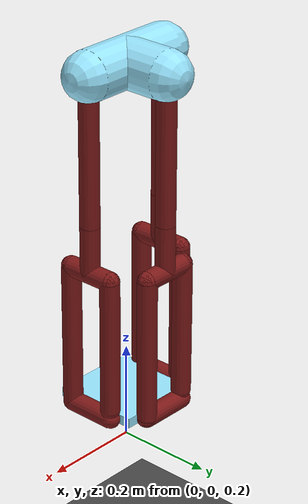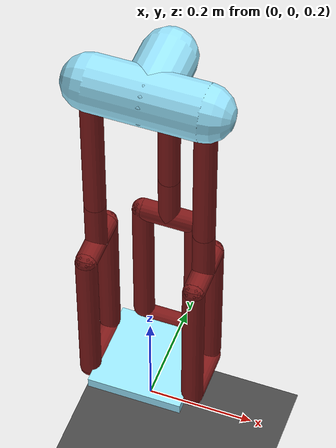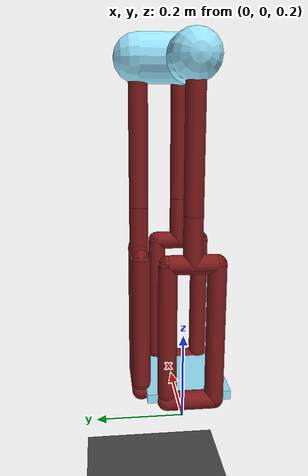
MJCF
<mujoco model="test01">
    <compiler coordinate="global"/>

    <default>
        <joint type="hinge" damping=".2" stiffness="1" armature=".01" limited="true" solimplimit="0 .99 .01"/>
    </default>
    <asset>
        <texture type="skybox" builtin="gradient" rgb1="0.6 0.6 0.6" rgb2="0 0 0" width="512" height="512"/>
        <texture name="texplane" type="2d" builtin="checker" rgb1=".25 .25 .25" rgb2=".3 .3 .3" width="512" height="512" mark="cross" markrgb=".8 .8 .8"/>
        <material name="matplane" reflectance="0.3" texture="texplane" texrepeat="1 1" texuniform="true"/>
    </asset>
    <worldbody>

        <!-- ======= Ground ======= -->
        <geom name="ground" type="plane" pos="0 0 0" size="10 10 2" material="matplane"/>
        <light directional="true" diffuse=".8 .8 .8" specular=".2 .2 .2" pos="0 0 5" dir="0 0 -1"/>

        <body name="rod0">
            <geom type="capsule" fromto="0.1 0 1  -0.1 0 1" size=".05" rgba=".6 .9 1. 1"/>
            <geom type="capsule" fromto="0. 0. 1  0. 0.1 1" size=".05" rgba=".6 .9 1. 1"/>
            <joint type="free"/>

            <body name="rod11">
                <geom type="capsule" fromto="0.1 0 1  0.1 0 0.7" size=".02" rgba=".5 .1 .1 1"/>
                <joint name="m1" type="hinge" pos="0.1 0 1" axis="0 -1 0" range="-80 80"/>

                <body name="rod21">
                    <geom  type="capsule" fromto="0.1 0. 0.7  0.1 0. 0.6" size=".02" rgba=".5 .1 .1 1"/>
                    <joint type="hinge" pos="0.1 0 0.7" axis="0 -1 0" range="-80 80"/>

                    <geom  type="capsule" fromto="0.1 0.05 0.6  0.1 -0.05 0.6" size=".02" rgba=".5 .1 .1 1"/>

                    <body name="rod31">
                        <geom type="capsule" fromto="0.1 0.05 0.6  0.1 0.05 0.32" size=".02" rgba=".5 .1 .1 1"/>
                        <joint type="hinge" pos="0.1 0.05 0.6" axis="1 0 0" range="-80 80"/>
                    </body>

                    <body name="rod32">
                        <geom type="capsule" fromto="0.1 -0.05 0.6  0.1 -0.05 0.3" size=".02" rgba=".5 .1 .1 1"/>
                        <joint type="hinge" pos="0.1 -0.05 0.6" axis="1 0 0" range="-80 80"/>

                        <body name="rod41">
                            <geom type="capsule" fromto="0.1 -0.05 0.3  0.1 0.05 0.3" size=".02" rgba=".5 .1 .1 1"/>
                            <joint type="hinge" pos="0.1 -0.05 0.3" axis="1 0 0" range="-80 80"/>
                        </body>
                    </body>

                </body>
            </body>

            <body name="rod12">
                <geom type="capsule" fromto="-0.1 0 1  -0.1 0 0.7" size=".02" rgba=".5 .1 .1 1"/>
                <joint name="m2" type="hinge" pos="-0.1 0 1" axis="0 1 0" range="-80 80"/>

                <body name="rod22">
                    <geom  type="capsule" fromto="-0.1 0 0.7  -0.1 0. 0.6" size=".02" rgba=".5 .1 .1 1"/>
                    <joint type="hinge" pos="-0.1 0 0.7" axis="0 1 0" range="-80 80"/>

                    <geom  type="capsule" fromto="-0.1 0.05 0.6  -0.1 -0.05 0.6" size=".02" rgba=".5 .1 .1 1"/>

                    <body name="rod33">
                        <geom type="capsule" fromto="-0.1 0.05 0.6  -0.1 0.05 0.32" size=".02" rgba=".5 .1 .1 1"/>
                        <joint type="hinge" pos="-0.1 0.05 0.6" axis="-1 0 0" range="-80 80"/>
                    </body>

                    <body name="rod34">
                        <geom type="capsule" fromto="-0.1 -0.05 0.6  -0.1 -0.05 0.3" size=".02" rgba=".5 .1 .1 1"/>
                        <joint type="hinge" pos="-0.1 -0.05 0.6" axis="-1 0 0" range="-80 80"/>

                        <body name="rod42">
                            <geom type="capsule" fromto="-0.1 -0.05 0.3  -0.1 0.05 0.3" size=".02" rgba=".5 .1 .1 1"/>
                            <joint type="hinge" pos="-0.1 -0.05 0.3" axis="-1 0 0" range="-80 80"/>
                        </body>
                    </body>

                </body>
            </body>

            <body name="rod13">
                <geom type="capsule" fromto="0. 0.1 1  0. 0.1 0.7" size=".02" rgba=".5 .1 .1 1"/>
                <joint name="m3" type="hinge" pos="0. 0.1 1" axis="1 0 0" range="-80 80"/>

                <body name="rod23">
                    <geom  type="capsule" fromto="0. 0.1 0.7  0. 0.1 0.6" size=".02" rgba=".5 .1 .1 1"/>
                    <joint type="hinge" pos="0. 0.1 0.7" axis="1 0 0" range="-80 80"/>

                    <geom  type="capsule" fromto="0.05 0.1 0.6  -0.05 0.1 0.6" size=".02" rgba=".5 .1 .1 1"/>

                    <body name="rod35">
                        <geom type="capsule" fromto="-0.05 0.1 0.6  -0.05 0.1 0.32" size=".02" rgba=".5 .1 .1 1"/>
                        <joint type="hinge" pos="-0.05 0.1 0.6" axis="0 1 0" range="-80 80"/>
                    </body>

                    <body name="rod36">
                        <geom type="capsule" fromto="0.05 0.1 0.6  0.05 0.1 0.3" size=".02" rgba=".5 .1 .1 1"/>
                        <joint type="hinge" pos="0.05 0.1 0.6" axis="0 1 0" range="-80 80"/>

                        <body name="rod43">
                            <geom type="capsule" fromto="0.05 0.1 0.3  -0.05 0.1 0.3" size=".02" rgba=".5 .1 .1 1"/>
                            <joint type="hinge" pos="0.05 0.1 0.3" axis="0 1 0" range="-80 80"/>
                        </body>
                    </body>

                </body>
            </body>

        </body>

        <body name="feet">
            <joint type="free"/>
            <geom type="box" pos="0 0 0.3" size="0.09 0.09 0.01" rgba=".6 .9 1. 1" density="1"/>
        </body>

    </worldbody>
    <equality>
        <connect anchor="0.1 0.05 0.3" body1="rod31" body2="rod41" name="equality_constraint1" solref="0.0002 1"/>
        <connect anchor="-0.1 0.05 0.3" body1="rod33" body2="rod42" name="equality_constraint2" solref="0.0002 1"/>
        <connect anchor="-0.05 0.2 0.3" body1="rod35" body2="rod43" name="equality_constraint3" solref="0.0002 1"/>

        <connect anchor="0.1 -0.05 0.3" body1="rod41" body2="feet" name="equality_constraint_f11" solref="0.0002 1"/>
        <connect anchor="0.1 0.05 0.3" body1="rod41" body2="feet" name="equality_constraint_f12" solref="0.0002 1"/>
        <connect anchor="-0.1 0.05 0.3" body1="rod42" body2="feet" name="equality_constraint_f21" solref="0.0002 1"/>
        <connect anchor="-0.1 -0.05 0.3" body1="rod42" body2="feet" name="equality_constraint_f22" solref="0.0002 1"/>
        <connect anchor="0.05 0.1 0.3" body1="rod43" body2="feet" name="equality_constraint_f31" solref="0.0002 1"/>
        <connect anchor="-0.05 0.1 0.3" body1="rod43" body2="feet" name="equality_constraint_f32" solref="0.0002 1"/>

    </equality>
    <actuator>
        <motor name="joint1_motor" joint="m1"/>
        <motor name="joint2_motor" joint="m2"/>
        <motor name="joint3_motor" joint="m3"/>
    </actuator>

</mujoco>
